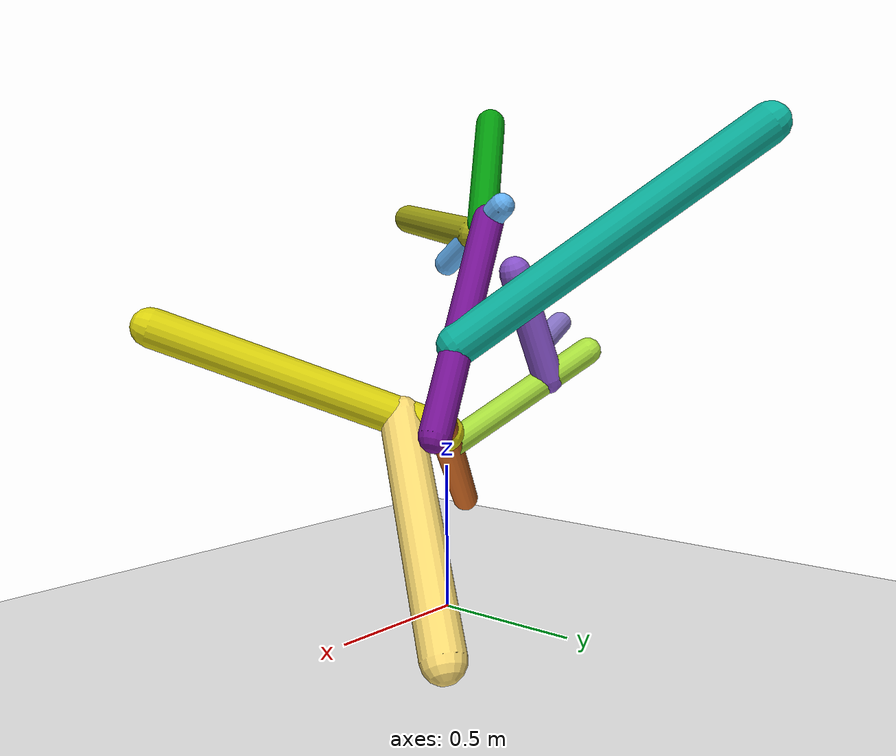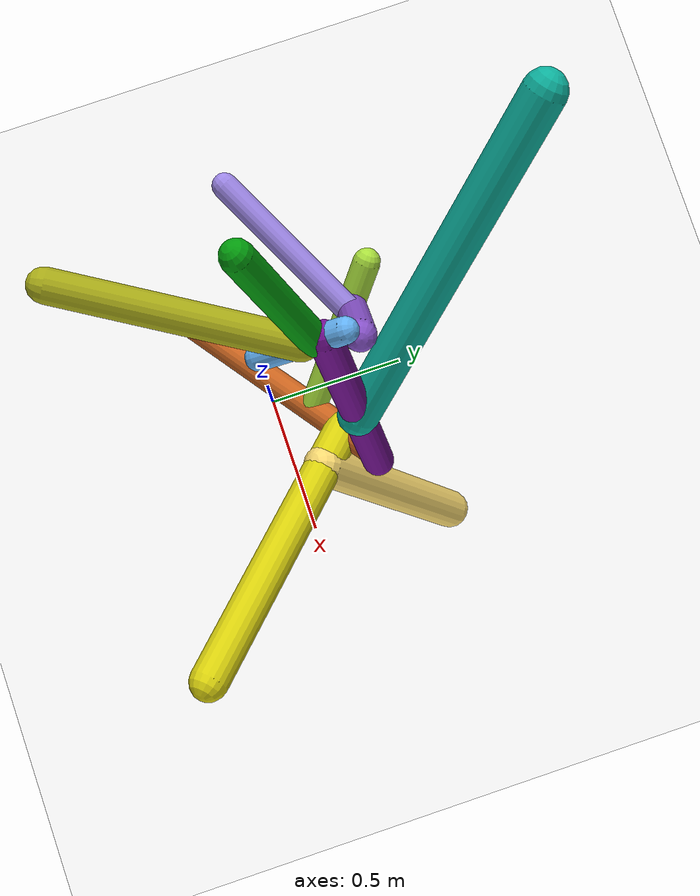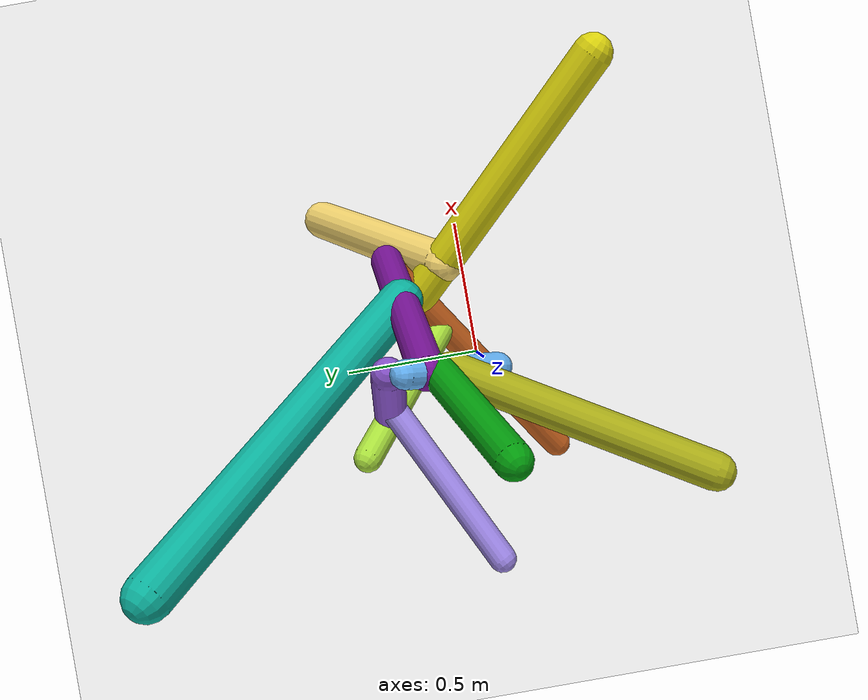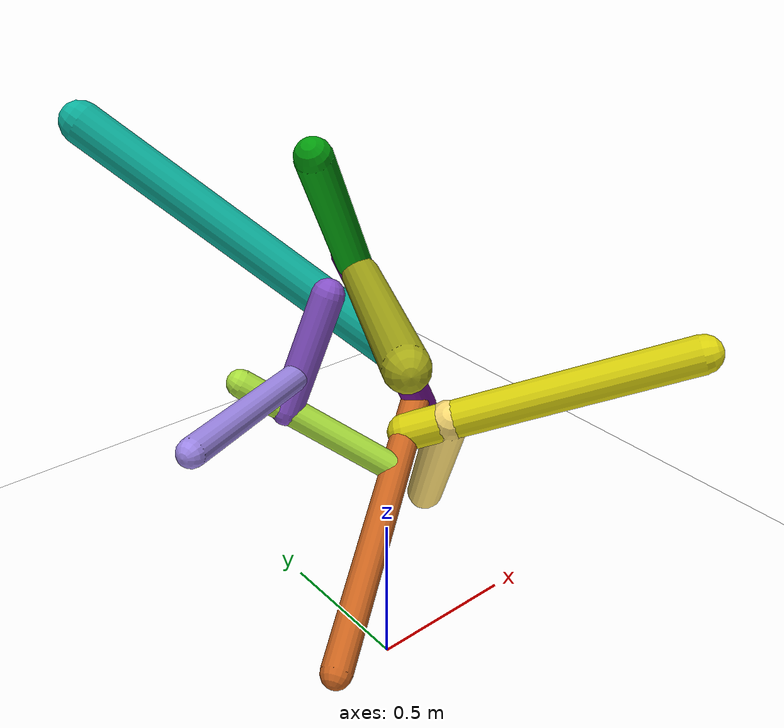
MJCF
<mujoco model="morphology">
  <option timestep="0.01"/>
  <default>
    <default class="/"/>
    <default class="0/"/>
    <default class="0/1/"/>
    <default class="0/2/"/>
    <default class="0/3/"/>
    <default class="0/3/4/"/>
    <default class="0/3/4/5/"/>
    <default class="0/3/4/5/6/"/>
    <default class="0/3/4/5/6/7/"/>
    <default class="0/3/4/8/"/>
    <default class="0/3/4/8/9/"/>
    <default class="0/3/10/"/>
  </default>
  <asset>
    <texture name="texplane" type="2d" builtin="checker" rgb1="0.10000000000000001 0.20000000000000001 0.29999999999999999" rgb2="0.20000000000000001 0.29999999999999999 0.40000000000000002" width="300" height="300"/>
    <material name="MatPlane" class="/" texture="texplane" texrepeat="20 20" specular="1" shininess="1" reflectance="0.5"/>
  </asset>
  <worldbody>
    <light name="//unnamed_light_0" class="/" directional="true" pos="0 0 1.5" dir="0 0 -1.3" cutoff="100" exponent="1" diffuse="1 1 1" specular="0.10000000000000001 0.10000000000000001 0.10000000000000001"/>
    <geom name="ground" class="/" type="plane" size="15 15 0.5" material="MatPlane" rgba="1 1 1 1"/>
    <site name="body" class="/" size="9.9999999999999995e-07 9.9999999999999995e-07 9.9999999999999995e-07" pos="0 0 1.202322816848755"/>
    <body pos="0 0 1.202322816848755" name="0/">
      <freejoint name="0/"/>
      <geom name="0/geom" class="0/" type="capsule" contype="1" conaffinity="1" condim="3" size="0.041987385007660069" rgba="0.39108963947990039 0.69489786389614738 0.95222069521016117 1" friction="0.59999999999999998 0.10000000000000001 0.10000000000000001" fromto="0 0 0 0.031542308060154789 0.25837325560073698 0.1787796152909964"/>
      <site name="0/end0" class="0/" size="0.0050000000000000001" pos="0.031542308060154789 0.25837325560073698 0.1787796152909964"/>
      <site name="0/attach1" class="0/" size="9.9999999999999995e-07 9.9999999999999995e-07 9.9999999999999995e-07" pos="0.020677804283076726 0.16937858831080033 0.11720036110676529"/>
      <body pos="0.020677804283076726 0.16937858831080033 0.11720036110676529" name="0/1/">
        <geom name="0/1/geom" class="0/1/" type="capsule" contype="1" conaffinity="1" condim="3" size="0.050793769221562889" rgba="0.012272922928098784 0.61253080653475667 0.052890915555768747 1" friction="0.59999999999999998 0.10000000000000001 0.10000000000000001" fromto="0 0 0 -0.22224230703818515 -0.14028198296066874 0.37417736462824513"/>
        <site name="0/1/end1" class="0/1/" size="0.0050000000000000001" pos="-0.22224230703818515 -0.14028198296066874 0.37417736462824513"/>
      </body>
      <site name="0/attach2" class="0/" size="9.9999999999999995e-07 9.9999999999999995e-07 9.9999999999999995e-07" pos="0.015965282084339495 0.13077679353229527 0.090490111998368622"/>
      <body pos="0.015965282084339495 0.13077679353229527 0.090490111998368622" name="0/2/">
        <geom name="0/2/geom" class="0/2/" type="capsule" contype="1" conaffinity="1" condim="3" size="0.054176347408678549" rgba="0.66210294396990044 0.66977792678598114 0.093034298396418857 1" friction="0.59999999999999998 0.10000000000000001 0.10000000000000001" fromto="0 0 0 -0.37936851107539038 -0.64573380392622837 0.10051202124236081"/>
        <site name="0/2/end2" class="0/2/" size="0.0050000000000000001" pos="-0.37936851107539038 -0.64573380392622837 0.10051202124236081"/>
      </body>
      <site name="0/attach3" class="0/" size="9.9999999999999995e-07 9.9999999999999995e-07 9.9999999999999995e-07" pos="0.024139016169297235 0.19773049526894868 0.13681827011580217"/>
      <body pos="0.024139016169297235 0.19773049526894868 0.13681827011580217" name="0/3/">
        <joint name="0/3/joint/" class="0/" type="hinge" axis="0 1 0" limited="true" range="-39.50853888483514 39.50853888483514"/>
        <geom name="0/3/geom" class="0/3/" type="capsule" contype="1" conaffinity="1" condim="3" size="0.052252094620804886" rgba="0.46853905280591124 0.075495694221972443 0.59150331060865091 1" friction="0.59999999999999998 0.10000000000000001 0.10000000000000001" fromto="0 0 0 0.34826076203422662 0.070686457572200156 -0.6677747629391928"/>
        <site name="0/3/end3" class="0/3/" size="0.0050000000000000001" pos="0.34826076203422662 0.070686457572200156 -0.6677747629391928"/>
        <site name="0/3/attach4" class="0/3/" size="9.9999999999999995e-07 9.9999999999999995e-07 9.9999999999999995e-07" pos="0.32004812625663781 0.064960141261847418 -0.61367826909870204"/>
        <body pos="0.32004812625663781 0.064960141261847418 -0.61367826909870204" name="0/3/4/">
          <geom name="0/3/4/geom" class="0/3/4/" type="capsule" contype="1" conaffinity="1" condim="3" size="0.048022529700367952" rgba="0.80047714418126814 0.39544539383477317 0.12261253331340616 1" friction="0.59999999999999998 0.10000000000000001 0.10000000000000001" fromto="0 0 0 -0.70400216772870494 -0.47792106634320619 -0.43072367648033549"/>
          <site name="0/3/4/end4" class="0/3/4/" size="0.0050000000000000001" pos="-0.70400216772870494 -0.47792106634320619 -0.43072367648033549"/>
          <site name="0/3/4/attach5" class="0/3/4/" size="9.9999999999999995e-07 9.9999999999999995e-07 9.9999999999999995e-07" pos="-0.21112849783030638 -0.14332733824391194 -0.12917295849901997"/>
          <body pos="-0.21112849783030638 -0.14332733824391194 -0.12917295849901997" name="0/3/4/5/">
            <joint name="0/3/4/5/joint/" class="0/3/4/" type="hinge" axis="0.67460692968470759 -0.54834332817725429 -0.494191344384808" limited="true" range="-44.60616306729834 44.60616306729834"/>
            <geom name="0/3/4/5/geom" class="0/3/4/5/" type="capsule" contype="1" conaffinity="1" condim="3" size="0.044958996983080507" rgba="0.66672108192091284 0.87795563537439081 0.2386044594245943 1" friction="0.59999999999999998 0.10000000000000001 0.10000000000000001" fromto="0 0 0 -0.36044939192389663 0.30520178663351549 0.30977695418831752"/>
            <site name="0/3/4/5/end5" class="0/3/4/5/" size="0.0050000000000000001" pos="-0.36044939192389663 0.30520178663351549 0.30977695418831752"/>
            <site name="0/3/4/5/attach6" class="0/3/4/5/" size="9.9999999999999995e-07 9.9999999999999995e-07 9.9999999999999995e-07" pos="-0.25631087138362096 0.21702501830379187 0.22027836040665488"/>
            <body pos="-0.25631087138362096 0.21702501830379187 0.22027836040665488" name="0/3/4/5/6/">
              <geom name="0/3/4/5/6/geom" class="0/3/4/5/6/" type="capsule" contype="1" conaffinity="1" condim="3" size="0.051683020976346444" rgba="0.5277702210663705 0.3220821470107389 0.78899861339176047 1" friction="0.59999999999999998 0.10000000000000001 0.10000000000000001" fromto="0 0 0 0.1518456498610542 -0.025890339390623685 0.3506224824757227"/>
              <site name="0/3/4/5/6/end6" class="0/3/4/5/6/" size="0.0050000000000000001" pos="0.1518456498610542 -0.025890339390623685 0.3506224824757227"/>
              <site name="0/3/4/5/6/attach7" class="0/3/4/5/6/" size="9.9999999999999995e-07 9.9999999999999995e-07 9.9999999999999995e-07" pos="0.047692904273599832 -0.0081318462484629116 0.11012633228668828"/>
              <body pos="0.047692904273599832 -0.0081318462484629116 0.11012633228668828" name="0/3/4/5/6/7/">
                <joint name="0/3/4/5/6/7/joint/" class="0/3/4/5/6/" type="hinge" axis="0.91803547596719781 0.02919836153663119 -0.39542169964388285" limited="true" range="-69.006544846137999 69.006544846137999"/>
                <geom name="0/3/4/5/6/7/geom" class="0/3/4/5/6/7/" type="capsule" contype="1" conaffinity="1" condim="3" size="0.041950826912707788" rgba="0.61973420780920485 0.53097241864861067 0.9099044096091784 1" friction="0.59999999999999998 0.10000000000000001 0.10000000000000001" fromto="0 0 0 -0.51123771055814204 -0.25724973626757375 0.055366869602210711"/>
                <site name="0/3/4/5/6/7/end7" class="0/3/4/5/6/7/" size="0.0050000000000000001" pos="-0.51123771055814204 -0.25724973626757375 0.055366869602210711"/>
              </body>
            </body>
          </body>
          <site name="0/3/4/attach8" class="0/3/4/" size="9.9999999999999995e-07 9.9999999999999995e-07 9.9999999999999995e-07" pos="-0.10631143295196997 -0.07217090476411625 -0.065043622522780647"/>
          <body pos="-0.10631143295196997 -0.07217090476411625 -0.065043622522780647" name="0/3/4/8/">
            <joint name="0/3/4/8/joint/" class="0/3/4/" type="hinge" axis="-2.7755575615628914e-17 -0.66947527554450648 0.7428343391595511" limited="true" range="-67.885251525228568 67.885251525228568"/>
            <geom name="0/3/4/8/geom" class="0/3/4/8/" type="capsule" contype="1" conaffinity="1" condim="3" size="0.062888003570987297" rgba="0.85780276726796401 0.82302298313197741 0.050392536136541044 1" friction="0.59999999999999998 0.10000000000000001 0.10000000000000001" fromto="0 0 0 0.62880328980123479 -0.64557235214582387 0.33581344036246019"/>
            <site name="0/3/4/8/end8" class="0/3/4/8/" size="0.0050000000000000001" pos="0.62880328980123479 -0.64557235214582387 0.33581344036246019"/>
            <site name="0/3/4/8/attach9" class="0/3/4/8/" size="9.9999999999999995e-07 9.9999999999999995e-07 9.9999999999999995e-07" pos="0.095641148621473868 -0.098191727490818795 0.051077314129426551"/>
            <body pos="0.095641148621473868 -0.098191727490818795 0.051077314129426551" name="0/3/4/8/9/">
              <geom name="0/3/4/8/9/geom" class="0/3/4/8/9/" type="capsule" contype="1" conaffinity="1" condim="3" size="0.068457967900261582" rgba="0.97812104019207724 0.85382673174606583 0.44288300767156585 1" friction="0.59999999999999998 0.10000000000000001 0.10000000000000001" fromto="0 0 0 0.25912221148751091 0.39803824366773277 -0.61149653971017193"/>
              <site name="0/3/4/8/9/end9" class="0/3/4/8/9/" size="0.0050000000000000001" pos="0.25912221148751091 0.39803824366773277 -0.61149653971017193"/>
            </body>
          </body>
        </body>
        <site name="0/3/attach10" class="0/3/" size="9.9999999999999995e-07 9.9999999999999995e-07 9.9999999999999995e-07" pos="0.20847328266482099 0.042313804644394305 -0.39973839170826392"/>
        <body pos="0.20847328266482099 0.042313804644394305 -0.39973839170826392" name="0/3/10/">
          <joint name="0/3/10/joint/" class="0/3/" type="hinge" axis="-0.88771525558332365 0.048463550586809456 -0.45783502407434273" limited="true" range="-64.193281002247772 64.193281002247772"/>
          <geom name="0/3/10/geom" class="0/3/10/" type="capsule" contype="1" conaffinity="1" condim="3" size="0.067702559292291797" rgba="0.044414124336659033 0.69025984936868723 0.61386514840954998 1" friction="0.59999999999999998 0.10000000000000001 0.10000000000000001" fromto="0 0 0 -0.61883148726480763 0.73264927456543649 0.68389251165263532"/>
          <site name="0/3/10/end10" class="0/3/10/" size="0.0050000000000000001" pos="-0.61883148726480763 0.73264927456543649 0.68389251165263532"/>
        </body>
      </body>
      <camera name="0/iso" class="0/" mode="trackcom" pos="-2.2999999999999998 -2.2999999999999998 1" xyaxes="0.45000000000000001 -0.45000000000000001 0 0.29999999999999999 0.14999999999999999 0.93999999999999995"/>
    </body>
  </worldbody>
  <actuator>
    <motor name="0/3/motor" class="0/3/" ctrllimited="true" ctrlrange="-1 1" gear="96" joint="0/3/joint/"/>
    <motor name="0/3/4/5/motor" class="0/3/4/5/" ctrllimited="true" ctrlrange="-1 1" gear="54" joint="0/3/4/5/joint/"/>
    <motor name="0/3/4/5/6/7/motor" class="0/3/4/5/6/7/" ctrllimited="true" ctrlrange="-1 1" gear="55" joint="0/3/4/5/6/7/joint/"/>
    <motor name="0/3/4/8/motor" class="0/3/4/8/" ctrllimited="true" ctrlrange="-1 1" gear="67" joint="0/3/4/8/joint/"/>
    <motor name="0/3/10/motor" class="0/3/10/" ctrllimited="true" ctrlrange="-1 1" gear="59" joint="0/3/10/joint/"/>
  </actuator>
  <sensor>
    <subtreelinvel name="velocity" body="0/"/>
  </sensor>
</mujoco>
